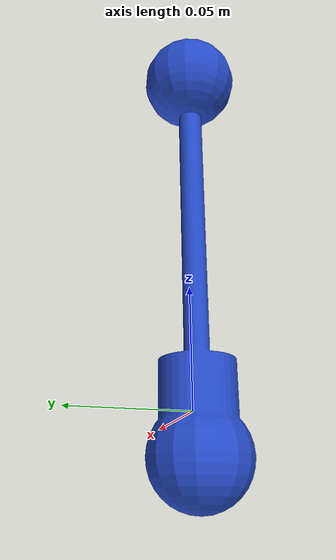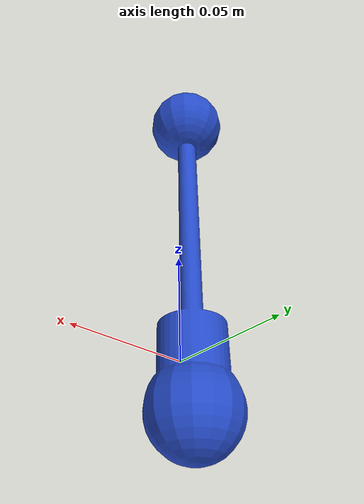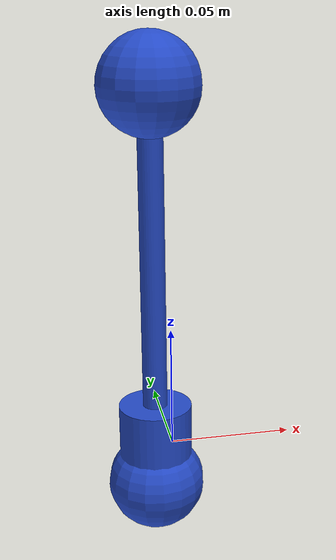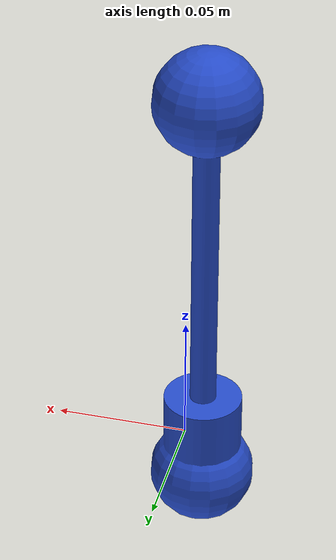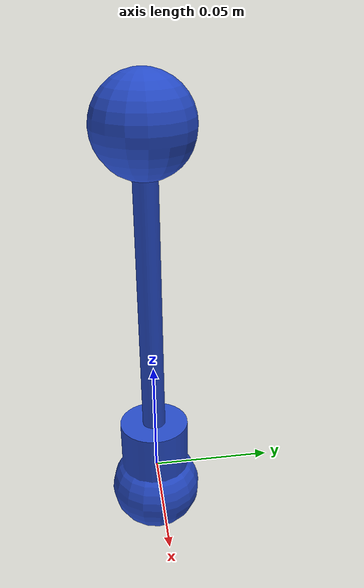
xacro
<?xml version="1.0"?>
<robot xmlns:xacro="http://ros.org/wiki/xacro" name="simple_tool">
  <link name="my_tool">
    <inertial>
      <origin xyz="0 0 0" />
      <mass value="1.0" />"0.83
      <inertia  ixx="0.0" ixy="0.0"  ixz="0.0"  iyy="0.0"  iyz="0.0"  izz="0.0" />
    </inertial>
    <visual>
      <origin xyz="-0.007 0 0.003" rpy="0 0 0"/>
      <geometry>
        <mesh filename="package://affordance_experiment/models/bone.dae" />
      </geometry>
    </visual>
    <collision>
      <origin xyz="-0.007 0 0.003" rpy="0 0 0"/>
      <geometry>
        <mesh filename="package://affordance_experiment/models/bone.dae" />
      </geometry>
    </collision>
  </link>
  <gazebo reference="my_tool">
    <material>Gazebo/Blue</material>
  </gazebo>
</robot>
